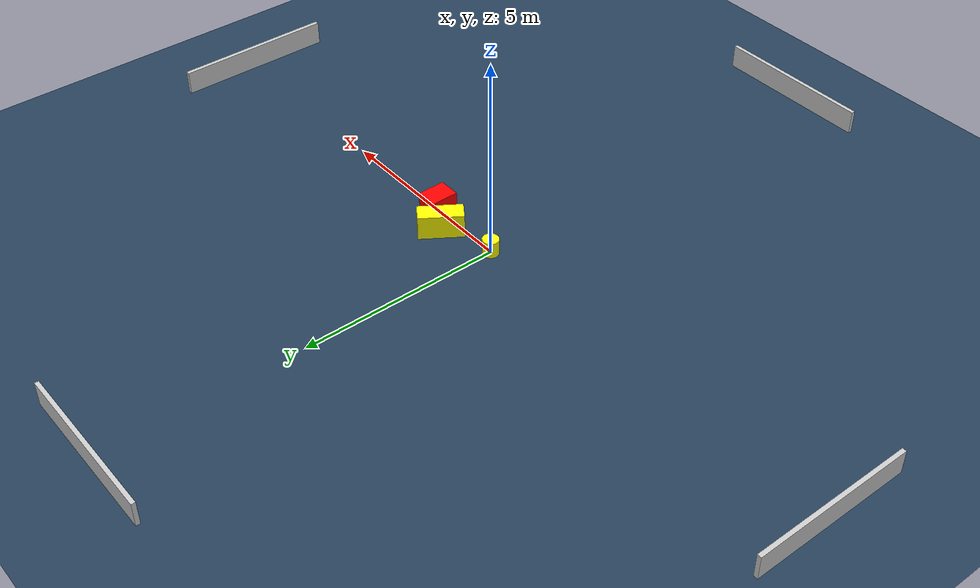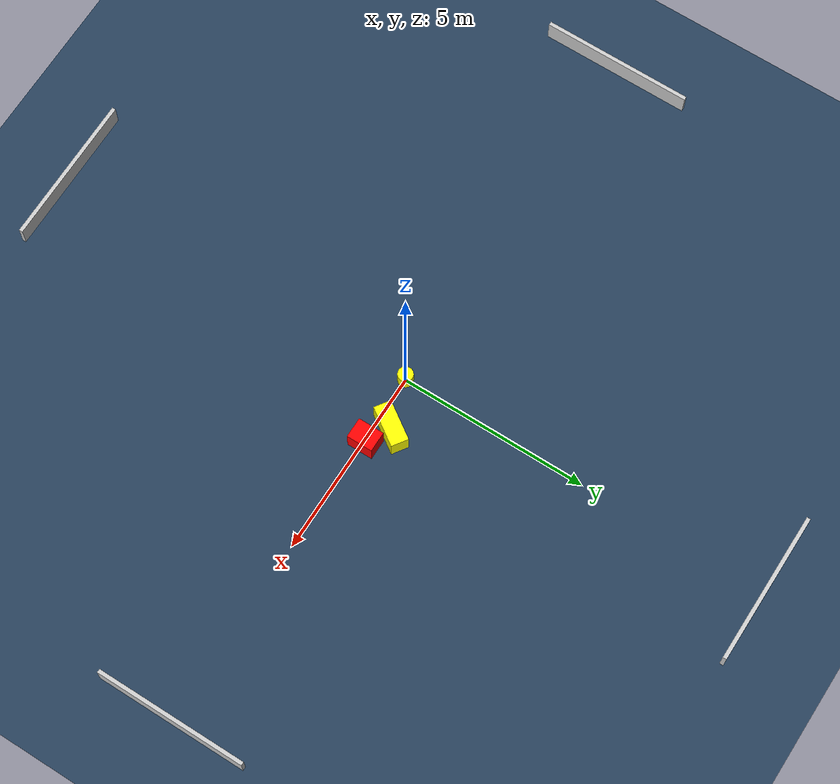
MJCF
<?xml version="1.0" ?>
<mujoco model="generated_environment">
  <option timestep="0.01" integrator="RK4" cone="elliptic"/>
  <default>
    <geom density="1"/>
  </default>
  <asset>
    <texture builtin="gradient" height="3072" name="skybox" rgb1="0.3 0.5 0.7" rgb2="0 0 0" type="skybox" width="512"/>
    <texture builtin="checker" height="300" name="groundplane" rgb1="0.2 0.3 0.4" rgb2="0.1 0.2 0.3" type="2d" width="300"/>
    <material name="groundplane" reflectance="0.2" texrepeat="5 5" texture="groundplane"/>
  </asset>
  <worldbody>
    <light dir="0 0 -1" directional="true" pos="0 0 1.5"/>
    <geom condim="3" friction="0.5 0.005 0.001" material="groundplane" name="floor" pos="0 0 0" size="0 0 0.05" type="plane"/>
    <body name="walls">
      <geom name="wall_1" condim="4" pos="-10.0 0.0 0.3" rgba="0.800000011920929 0.800000011920929 0.800000011920929 1.0" size="0.05 2.0 0.3" type="box"/>
      <geom name="wall_2" condim="4" pos="10.0 0.0 0.3" rgba="0.800000011920929 0.800000011920929 0.800000011920929 1.0" size="0.05 2.0 0.3" type="box"/>
      <geom name="wall_3" condim="4" pos="0.0 -10.0 0.3" rgba="0.800000011920929 0.800000011920929 0.800000011920929 1.0" size="2.0 0.05 0.3" type="box"/>
      <geom name="wall_4" condim="4" pos="0.0 10.0 0.3" rgba="0.800000011920929 0.800000011920929 0.800000011920929 1.0" size="2.0 0.05 0.3" type="box"/>
    </body>
    <body name="robot">
      <joint name="joint_x" type="slide" pos="0 0 0" axis="1 0 0"/>
      <joint name="joint_y" type="slide" pos="0 0 0" axis="0 1 0"/>
      <geom name="robot" type="cylinder" pos="0.0 0.0 0.2" size="0.2 0.2 0.0" mass="5.0" friction="1.0 0.005 0.0001" condim="4" rgba="1.0 1.0 0.0 1.0"/>
    </body>
    <body name="obstacle_1_movable">
      <geom name="obstacle_1_movable" condim="4" pos="1.304817182451455 0.4202898472708288 0.3" euler="0 0 55.773574881392044" friction="0.0 0.005 0.001" rgba="1.0 1.0 0.0 1.0" size="0.5402142426844192 0.22930060693522286 0.3" type="box" mass="0.1"/>
      <joint type="free"/>
    </body>
    <body name="obstacle_2_static">
      <geom name="obstacle_2_static" condim="4" pos="1.8804385452593761 0.057829970511168664 0.3" euler="0 0 180.01029253719042" friction="0.0 0.005 0.001" rgba="1.0 0.0 0.0 1.0" size="0.26722236692763846 0.34431061739127744 0.3" type="box"/>
    </body>
  </worldbody>
  <actuator>
    <motor name="actuator_x" joint="joint_x" gear="1" ctrlrange="-1 1"/>
    <motor name="actuator_y" joint="joint_y" gear="1" ctrlrange="-1 1"/>
  </actuator>
</mujoco>
